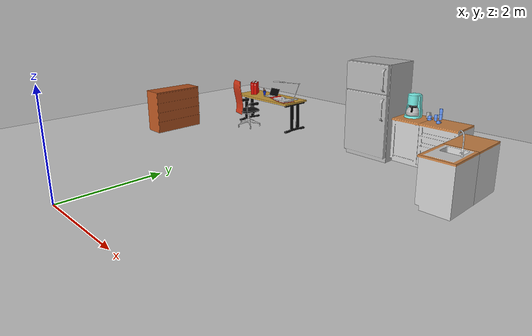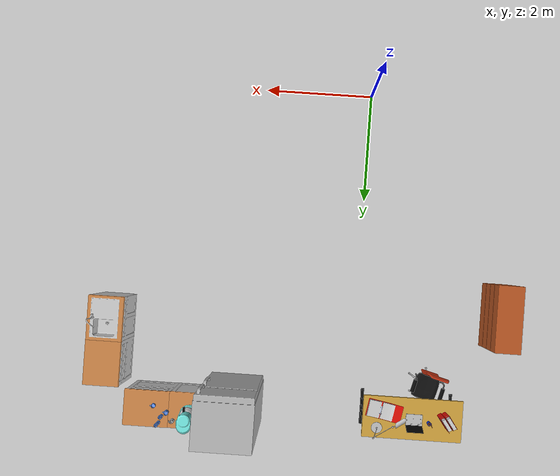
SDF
<sdf version="1.4">
 <world name="default">
  <model name="ground_plane">
   <static>1</static>
   <link name="link">
    <collision name="collision">
     <geometry><plane><normal>0 0 1</normal><size>100 100</size></plane></geometry>
     <surface><friction><ode><mu>100</mu><mu2>50</mu2></ode></friction></surface>
    </collision>
    <visual name="visual">
     <cast_shadows>0</cast_shadows>
     <geometry><plane><normal>0 0 1</normal><size>100 100</size></plane></geometry>
     <material>
      <script><uri>file://media/materials/scripts/gazebo.material</uri><name>Gazebo/Grey</name></script>
     </material>
    </visual>
    <velocity_decay><linear>0</linear><angular>0</angular></velocity_decay>
   </link>
  </model>
  <model name="desk">
   <static>1</static>
   <link name="link">
    <visual name="mesh"><geometry><mesh><uri>model://meshes/desk.dae</uri></mesh></geometry></visual>
    <collision name="top_collider">
     <pose>0 0 0.71 0 -0 0</pose>
     <geometry><box><size>1.8 0.75 0.04</size></box></geometry>
    </collision>
    <collision name="left_leg">
     <pose>0.85 0 0.345 0 -0 0</pose>
     <geometry><box><size>0.06 0.69 0.69</size></box></geometry>
    </collision>
    <collision name="right_leg">
     <pose>-0.85 0 0.345 0 -0 0</pose>
     <geometry><box><size>0.06 0.69 0.69</size></box></geometry>
    </collision>
    <velocity_decay><linear>0</linear><angular>0</angular></velocity_decay>
   </link>
   <pose>-1.06976 5.95101 0 0 -0 0</pose>
  </model>
  <model name="office_chair">
   <static>1</static>
   <link name="link">
    <visual name="mesh"><geometry><mesh><uri>model://meshes/office_chair.dae</uri></mesh></geometry></visual>
    <collision name="seat">
     <pose>0 0 0.225 0 -0 0</pose>
     <geometry><box><size>0.46 0.5 0.45</size></box></geometry>
    </collision>
    <collision name="back_rest">
     <pose>0 -0.255 0.84 0 -0 0</pose>
     <geometry><box><size>0.4 0.04 0.84</size></box></geometry>
    </collision>
    <velocity_decay><linear>0</linear><angular>0</angular></velocity_decay>
   </link>
   <pose>-1.3345 5.40941 0 0 0 -0.253782</pose>
  </model>
  <model name="laptop">
   <static>1</static>
   <link name="link">
    <visual name="mesh"><geometry><mesh><uri>model://meshes/laptop.dae</uri></mesh></geometry></visual>
    <collision name="collider">
     <geometry><mesh><uri>model://meshes/laptop_collision.stl</uri></mesh></geometry>
    </collision>
    <velocity_decay><linear>0</linear><angular>0</angular></velocity_decay>
   </link>
   <pose>-1.09837 5.96236 0.730962 0 -0 0</pose>
  </model>
  <model name="desk_lamp">
   <static>1</static>
   <link name="link">
    <visual name="mesh"><geometry><mesh><uri>model://meshes/desk_lamp.dae</uri></mesh></geometry></visual>
    <velocity_decay><linear>0</linear><angular>0</angular></velocity_decay>
   </link>
   <pose>-0.434237 6.15029 0.725892 0 0 -0.977312</pose>
  </model>
  <model name="folder_open">
   <static>1</static>
   <link name="link">
    <visual name="mesh"><geometry><mesh><uri>model://meshes/folder_open.dae</uri></mesh></geometry></visual>
    <collision name="box">
     <pose>0 0 0.025 0 -0 0</pose>
     <geometry><box><size>0.63 0.32 0.05</size></box></geometry>
    </collision>
    <velocity_decay><linear>0</linear><angular>0</angular></velocity_decay>
   </link>
   <pose>-0.555025 5.83603 0.731065 0 0 -0.177012</pose>
  </model>
  <model name="folder">
   <static>1</static>
   <link name="link">
    <visual name="mesh"><geometry><mesh><uri>model://meshes/folder.dae</uri></mesh></geometry></visual>
    <collision name="box">
     <pose>0 0 0.04 0 -0 0</pose>
     <geometry><box><size>0.28 0.32 0.08</size></box></geometry>
    </collision>
    <velocity_decay><linear>0</linear><angular>0</angular></velocity_decay>
   </link>
   <pose>-1.65065 5.92096 0.882314 1.5708 5.55112e-17 2.18905</pose>
  </model>
  <model name="folder_clone">
   <static>1</static>
   <link name="link">
    <visual name="mesh"><geometry><mesh><uri>model://meshes/folder.dae</uri></mesh></geometry></visual>
    <collision name="box">
     <pose>0 0 0.04 0 -0 0</pose>
     <geometry><box><size>0.28 0.32 0.08</size></box></geometry>
    </collision>
    <velocity_decay><linear>0</linear><angular>0</angular></velocity_decay>
   </link>
   <pose>-1.73233 5.89193 0.882314 1.5708 5.55112e-17 2.18905</pose>
  </model>
  <model name="fridge">
   <static>1</static>
   <link name="link">
    <visual name="mesh"><geometry><mesh><uri>model://meshes/fridge.dae</uri></mesh></geometry></visual>
    <collision name="collider">
     <pose>0 -0.05 1 0 -0 0</pose>
     <geometry><box><size>1 0.977 2</size></box></geometry>
    </collision>
    <velocity_decay><linear>0</linear><angular>0</angular></velocity_decay>
   </link>
   <pose>2.19767 5.9753 0 0 -0 0</pose>
  </model>
  <model name="floor_unit_narrow1">
   <static>1</static>
   <link name="link">
    <visual name="mesh">
     <geometry><mesh><uri>model://meshes/floor_unit_narrow1.dae</uri></mesh></geometry>
    </visual>
    <collision name="collider">
     <pose>0 0 0.44 0 -0 0</pose>
     <geometry><box><size>0.6 0.6 0.88</size></box></geometry>
    </collision>
    <velocity_decay><linear>0</linear><angular>0</angular></velocity_decay>
   </link>
   <pose>2.99677 6.05346 0 0 -0 0</pose>
  </model>
  <model name="floor_unit_sink">
   <static>1</static>
   <link name="link">
    <visual name="mesh"><geometry><mesh><uri>model://meshes/floor_unit_sink.dae</uri></mesh></geometry></visual>
    <collision name="collider">
     <pose>0 0 0.44 0 -0 0</pose>
     <geometry><box><size>0.8 0.6 0.88</size></box></geometry>
    </collision>
    <velocity_decay><linear>0</linear><angular>0</angular></velocity_decay>
   </link>
   <pose>4.54962 4.49747 0 0 0 -1.5708</pose>
  </model>
  <model name="dresser">
   <static>1</static>
   <link name="link">
    <visual name="mesh"><geometry><mesh><uri>model://meshes/dresser.dae</uri></mesh></geometry></visual>
    <collision name="collider">
     <pose>0 0 0.5 0 -0 0</pose>
     <geometry><box><size>1.2 0.47 1</size></box></geometry>
    </collision>
    <velocity_decay><linear>0</linear><angular>0</angular></velocity_decay>
   </link>
   <pose>-2.61719 4.02642 0 0 -0 1.5708</pose>
  </model>
  <model name="floor_unit_wide">
   <static>1</static>
   <link name="link">
    <visual name="mesh"><geometry><mesh><uri>model://meshes/floor_unit_wide.dae</uri></mesh></geometry></visual>
    <collision name="collider">
     <pose>0 0 0.44 0 -0 0</pose>
     <geometry><box><size>0.8 0.6 0.88</size></box></geometry>
    </collision>
    <velocity_decay><linear>0</linear><angular>0</angular></velocity_decay>
   </link>
   <pose>4.55144 5.29738 0 0 0 -1.5708</pose>
  </model>
  <model name="floor_unit_wide_0">
   <static>1</static>
   <link name="link">
    <visual name="mesh"><geometry><mesh><uri>model://meshes/floor_unit_wide.dae</uri></mesh></geometry></visual>
    <collision name="collider">
     <pose>0 0 0.44 0 -0 0</pose>
     <geometry><box><size>0.8 0.6 0.88</size></box></geometry>
    </collision>
    <velocity_decay><linear>0</linear><angular>0</angular></velocity_decay>
   </link>
   <pose>3.69685 6.05771 0 0 -0 0</pose>
  </model>
  <model name="coffee_machine">
   <static>1</static>
   <link name="link">
    <visual name="mesh"><geometry><mesh><uri>model://meshes/coffee_machine.dae</uri></mesh></geometry></visual>
    <collision name="base_collider">
     <pose>0 0 0.02 0 -0 0</pose>
     <geometry><box><size>0.34 0.4 0.04</size></box></geometry>
    </collision>
    <collision name="top_collider">
     <pose>0 0 0.36 0 -0 0</pose>
     <geometry><cylinder><radius>0.11</radius><length>0.2</length></cylinder></geometry>
    </collision>
    <velocity_decay><linear>0</linear><angular>0</angular></velocity_decay>
   </link>
   <pose>2.9297 6.08817 0.918779 0 -0 0</pose>
  </model>
  <model name="coffee_pot">
   <static>1</static>
   <link name="link">
    <visual name="mesh"><geometry><mesh><uri>model://meshes/coffee_pot.dae</uri></mesh></geometry></visual>
    <collision name="collider">
     <pose>0 0 0.08 0 -0 0</pose>
     <geometry><cylinder><radius>0.135</radius><length>0.16</length></cylinder></geometry>
    </collision>
    <velocity_decay><linear>0</linear><angular>0</angular></velocity_decay>
   </link>
   <pose>2.9355 6.09004 0.960007 0 -0 0.387948</pose>
  </model>
  <model name="glass">
   <static>1</static>
   <link name="link">
    <visual name="mesh"><geometry><mesh><uri>model://meshes/glass.dae</uri></mesh></geometry></visual>
    <collision name="collider">
     <pose>0 0 0.06 0 -0 0</pose>
     <geometry><cylinder><radius>0.033</radius><length>0.12</length></cylinder></geometry>
    </collision>
    <velocity_decay><linear>0</linear><angular>0</angular></velocity_decay>
   </link>
   <pose>3.41165 6.15206 0.918146 0 -0 0</pose>
  </model>
  <model name="glass_clone">
   <static>1</static>
   <link name="link">
    <visual name="mesh"><geometry><mesh><uri>model://meshes/glass.dae</uri></mesh></geometry></visual>
    <collision name="collider">
     <pose>0 0 0.06 0 -0 0</pose>
     <geometry><cylinder><radius>0.033</radius><length>0.12</length></cylinder></geometry>
    </collision>
    <velocity_decay><linear>0</linear><angular>0</angular></velocity_decay>
   </link>
   <pose>3.45215 6.26601 1.02112 0 -0 0</pose>
  </model>
  <model name="glass_clone_0">
   <static>1</static>
   <link name="link">
    <visual name="mesh"><geometry><mesh><uri>model://meshes/glass.dae</uri></mesh></geometry></visual>
    <collision name="collider">
     <pose>0 0 0.06 0 -0 0</pose>
     <geometry><cylinder><radius>0.033</radius><length>0.12</length></cylinder></geometry>
    </collision>
    <velocity_decay><linear>0</linear><angular>0</angular></velocity_decay>
   </link>
   <pose>3.45117 6.26738 0.918146 0 -0 0</pose>
  </model>
  <model name="milk_pot">
   <static>1</static>
   <link name="link">
    <visual name="mesh"><geometry><mesh><uri>model://meshes/milk_pot.dae</uri></mesh></geometry></visual>
    <collision name="collider">
     <pose>0 0 0.06 0 -0 0</pose>
     <geometry><cylinder><radius>0.04</radius><length>0.12</length></cylinder></geometry>
    </collision>
    <velocity_decay><linear>0</linear><angular>0</angular></velocity_decay>
   </link>
   <pose>3.20975 6.21746 0.919065 0 -0 3.13042</pose>
  </model>
  <model name="pencil_jar">
   <static>1</static>
   <link name="link">
    <visual name="mesh"><geometry><mesh><uri>model://meshes/pencil_jar.dae</uri></mesh></geometry></visual>
    <collision name="collider">
     <pose>0 0 0.1 0 -0 0</pose>
     <geometry><cylinder><radius>0.035</radius><length>0.2</length></cylinder></geometry>
    </collision>
    <velocity_decay><linear>0</linear><angular>0</angular></velocity_decay>
   </link>
   <pose>-1.36135 5.9995 0.728069 0 -0 0</pose>
  </model>
  <model name="cup">
   <static>1</static>
   <link name="link">
    <visual name="mesh"><geometry><mesh><uri>model://meshes/cup.dae</uri></mesh></geometry></visual>
    <collision name="collider">
     <pose>0 0 0.025 0 -0 0</pose>
     <geometry><cylinder><radius>0.04</radius><length>0.05</length></cylinder></geometry>
    </collision>
    <velocity_decay><linear>0</linear><angular>0</angular></velocity_decay>
   </link>
   <pose>3.56031 5.97388 0.922223 0 -0 0</pose>
  </model>
  <model name="cup_clone">
   <static>1</static>
   <link name="link">
    <visual name="mesh"><geometry><mesh><uri>model://meshes/cup.dae</uri></mesh></geometry></visual>
    <collision name="collider">
     <pose>0 0 0.025 0 -0 0</pose>
     <geometry><cylinder><radius>0.04</radius><length>0.05</length></cylinder></geometry>
    </collision>
    <velocity_decay><linear>0</linear><angular>0</angular></velocity_decay>
   </link>
   <pose>3.31909 6.07227 0.922223 0 -0 0</pose>
  </model>
  <model name="cup_clone_clone">
   <static>1</static>
   <link name="link">
    <visual name="mesh"><geometry><mesh><uri>model://meshes/cup.dae</uri></mesh></geometry></visual>
    <collision name="collider">
     <pose>0 0 0.025 0 -0 0</pose>
     <geometry><cylinder><radius>0.04</radius><length>0.05</length></cylinder></geometry>
    </collision>
    <velocity_decay><linear>0</linear><angular>0</angular></velocity_decay>
   </link>
   <pose>3.32604 6.07413 0.96566 0 -0.257538 -0.322076</pose>
  </model>
 </world>
</sdf>
